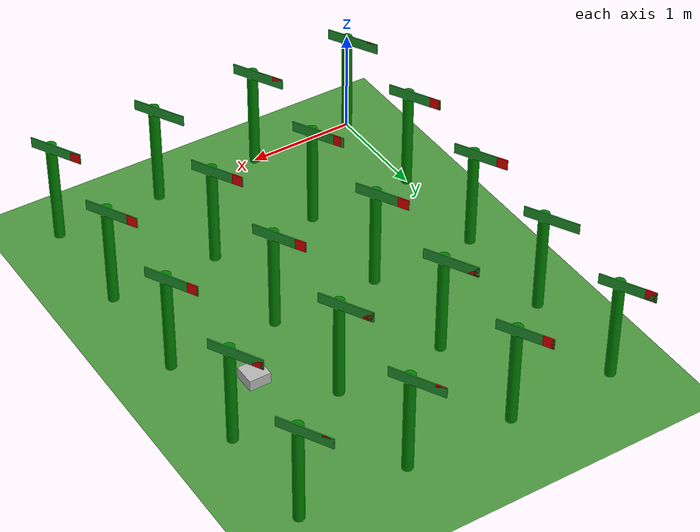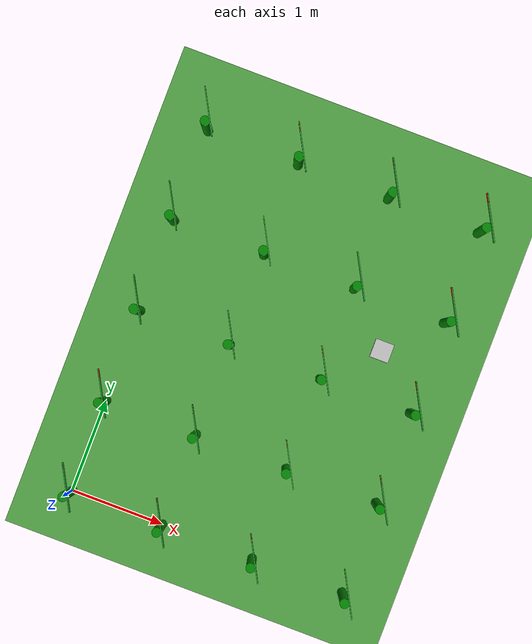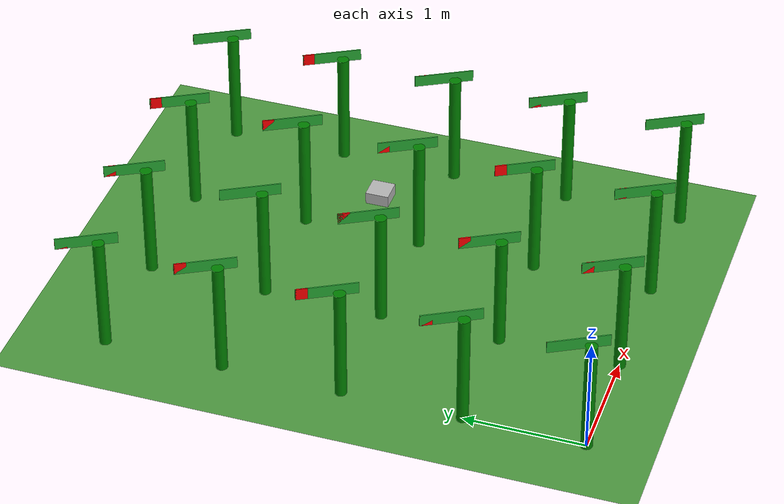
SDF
<?xml version="1.0" ?>
<sdf version="1.6">
  <world name="default">
    <!-- Lighting -->
    <light name="sun" type="directional">
      <pose>0 0 10 0 -0 0</pose>
      <diffuse>0.9 0.9 0.9 1</diffuse>
      <specular>0.9 0.9 0.9 1</specular>
      <attenuation>
        <range>100</range>
        <constant>0.9</constant>
        <linear>0.07</linear>
        <quadratic>0.017</quadratic>
      </attenuation>
      <direction>-1 -1 -1</direction>
    </light>

    <!-- Ground Plane -->
    <model name='ground_plane'>
      <static>true</static>
      <link name='link'>
        <collision name='collision'>
          <geometry>
            <plane>
              <normal>0 0 1</normal>
              <size>100 100</size>
            </plane>
          </geometry>
        </collision>
        <visual name='visual'>
          <geometry>
            <plane>
              <normal>0 0 1</normal>
              <size>100 100</size>
            </plane>
          </geometry>
          <material>
            <script>
              <uri>file://media/materials/scripts/gazebo.material</uri>
              <name>Gazebo/Grass</name>
            </script>
          </material>
        </visual>
      </link>
    </model>

    <model name='maize_field'>
      <model name='maize_plant_0_0'>
        <pose>0 0 0.5 0 0 0</pose>
        <static>true</static>
        <link name='stalk'>
          <visual name='stalk_visual'>
            <geometry>
              <cylinder>
                <radius>0.05</radius> <!-- Thickness of the stalk -->
                <length>1.0</length> <!-- Height of the stalk -->
              </cylinder>
            </geometry>
            <material>
              <diffuse>0 0.5 0 1</diffuse> <!-- Green color for the stalk -->
            </material>
          </visual>
          <collision name='stalk_collision'>
            <geometry>
              <cylinder>
                <radius>0.05</radius>
                <length>1.0</length>
              </cylinder>
            </geometry>
          </collision>
          <inertial>
            <mass>0.1</mass>
            <inertia>
              <ixx>0.01</ixx>
              <iyy>0.01</iyy>
              <izz>0.01</izz>
            </inertia>
          </inertial>
        </link>
        <link name='leaf'>
          <pose>0 0.1 0.5 0 0 0.5</pose> <!-- Position and orientation of the leaf -->
          <visual name='leaf_visual'>
            <geometry>
              <box>
                <size>0.01 0.5 0.1</size> <!-- Size of the leaf -->
              </box>
            </geometry>
            <material>
              <script>
                <uri>file://media/materials/scripts/gazebo.material</uri>
                <name>Gazebo/Green</name> <!-- Base green color -->
              </script>
            </material>
          </visual>
          <visual name='rust_patch'>
            <pose>0 0.2 0 0 0 0</pose> <!-- Position of the rust patch -->
            <geometry>
              <box>
                <size>0.01 0.1 0.1</size> <!-- Size of the rust patch -->
              </box>
            </geometry>
            <material>
              <diffuse>1 0 0 1</diffuse> <!-- Red color for rust -->
            </material>
          </visual>
          <collision name='leaf_collision'>
            <geometry>
              <box>
                <size>0.01 0.5 0.1</size>
              </box>
            </geometry>
          </collision>
          <inertial>
            <mass>0.01</mass>
            <inertia>
              <ixx>0.001</ixx>
              <iyy>0.001</iyy>
              <izz>0.001</izz>
            </inertia>
          </inertial>
        </link>
      </model>

      <!-- Maize Plant 1 -->
      <model name='maize_plant_0_0'>
        <pose>0 1 0.5 0 0 0</pose>
        <static>true</static>
        <link name='stalk'>
          <visual name='stalk_visual'>
            <geometry>
              <cylinder>
                <radius>0.05</radius> <!-- Thickness of the stalk -->
                <length>1.0</length> <!-- Height of the stalk -->
              </cylinder>
            </geometry>
            <material>
              <diffuse>0 0.5 0 1</diffuse> <!-- Green color for the stalk -->
            </material>
          </visual>
          <collision name='stalk_collision'>
            <geometry>
              <cylinder>
                <radius>0.05</radius>
                <length>1.0</length>
              </cylinder>
            </geometry>
          </collision>
          <inertial>
            <mass>0.1</mass>
            <inertia>
              <ixx>0.01</ixx>
              <iyy>0.01</iyy>
              <izz>0.01</izz>
            </inertia>
          </inertial>
        </link>
        <link name='leaf'>
          <pose>0 0.1 0.5 0 0 0.5</pose> <!-- Position and orientation of the leaf -->
          <visual name='leaf_visual'>
            <geometry>
              <box>
                <size>0.01 0.5 0.1</size> <!-- Size of the leaf -->
              </box>
            </geometry>
            <material>
              <script>
                <uri>file://media/materials/scripts/gazebo.material</uri>
                <name>Gazebo/Green</name> <!-- Base green color -->
              </script>
            </material>
          </visual>
          <visual name='rust_patch'>
            <pose>0 0.2 0 0 0 0</pose> <!-- Position of the rust patch -->
            <geometry>
              <box>
                <size>0.01 0.1 0.1</size> <!-- Size of the rust patch -->
              </box>
            </geometry>
            <material>
              <diffuse>1 0 0 1</diffuse> <!-- Red color for rust -->
            </material>
          </visual>
          <collision name='leaf_collision'>
            <geometry>
              <box>
                <size>0.01 0.5 0.1</size>
              </box>
            </geometry>
          </collision>
          <inertial>
            <mass>0.01</mass>
            <inertia>
              <ixx>0.001</ixx>
              <iyy>0.001</iyy>
              <izz>0.001</izz>
            </inertia>
          </inertial>
        </link>
      </model>

<!-- Maize Plant 2 -->
      <model name='maize_plant_0_1'>
        <pose>0 2 0.5 0 0 0</pose>
        <static>true</static>
        <link name='stalk'>
          <visual name='stalk_visual'>
            <geometry>
              <cylinder>
                <radius>0.05</radius>
                <length>1.0</length>
              </cylinder>
            </geometry>
            <material>
              <diffuse>0 0.5 0 1</diffuse>
            </material>
          </visual>
          <collision name='stalk_collision'>
            <geometry>
              <cylinder>
                <radius>0.05</radius>
                <length>1.0</length>
              </cylinder>
            </geometry>
          </collision>
          <inertial>
            <mass>0.1</mass>
            <inertia>
              <ixx>0.01</ixx>
              <iyy>0.01</iyy>
              <izz>0.01</izz>
            </inertia>
          </inertial>
        </link>
        <link name='leaf'>
          <pose>0 0.1 0.5 0 0 0.5</pose>
          <visual name='leaf_visual'>
            <geometry>
              <box>
                <size>0.01 0.5 0.1</size>
              </box>
            </geometry>
            <material>
              <script>
                <uri>file://media/materials/scripts/gazebo.material</uri>
                <name>Gazebo/Green</name>
              </script>
            </material>
          </visual>
          <visual name='rust_patch'>
            <pose>0 0.2 0 0 0 0</pose>
            <geometry>
              <box>
                <size>0.01 0.1 0.1</size>
              </box>
            </geometry>
            <material>
              <diffuse>1 0 0 1</diffuse>
            </material>
          </visual>
          <collision name='leaf_collision'>
            <geometry>
              <box>
                <size>0.01 0.5 0.1</size>
              </box>
            </geometry>
          </collision>
          <inertial>
            <mass>0.01</mass>
            <inertia>
              <ixx>0.001</ixx>
              <iyy>0.001</iyy>
              <izz>0.001</izz>
            </inertia>
          </inertial>
        </link>
      </model>

      <!-- Maize Plant 1 -->
      <model name='maize_plant_0_2'>
        <pose>0 3 0.5 0 0 0</pose>
        <static>true</static>
        <link name='stalk'>
          <visual name='stalk_visual'>
            <geometry>
              <cylinder>
                <radius>0.05</radius> <!-- Thickness of the stalk -->
                <length>1.0</length> <!-- Height of the stalk -->
              </cylinder>
            </geometry>
            <material>
              <diffuse>0 0.5 0 1</diffuse> <!-- Green color for the stalk -->
            </material>
          </visual>
          <collision name='stalk_collision'>
            <geometry>
              <cylinder>
                <radius>0.05</radius>
                <length>1.0</length>
              </cylinder>
            </geometry>
          </collision>
          <inertial>
            <mass>0.1</mass>
            <inertia>
              <ixx>0.01</ixx>
              <iyy>0.01</iyy>
              <izz>0.01</izz>
            </inertia>
          </inertial>
        </link>
        <link name='leaf'>
          <pose>0 0.1 0.5 0 0 0.5</pose> <!-- Position and orientation of the leaf -->
          <visual name='leaf_visual'>
            <geometry>
              <box>
                <size>0.01 0.5 0.1</size> <!-- Size of the leaf -->
              </box>
            </geometry>
            <material>
              <script>
                <uri>file://media/materials/scripts/gazebo.material</uri>
                <name>Gazebo/Green</name> <!-- Base green color -->
              </script>
            </material>
          </visual>
          <visual name='rust_patch'>
            <pose>0 0.2 0 0 0 0</pose> <!-- Position of the rust patch -->
            <geometry>
              <box>
                <size>0.01 0.1 0.1</size> <!-- Size of the rust patch -->
              </box>
            </geometry>
            <material>
              <diffuse>1 0 0 1</diffuse> <!-- Red color for rust -->
            </material>
          </visual>
          <collision name='leaf_collision'>
            <geometry>
              <box>
                <size>0.01 0.5 0.1</size>
              </box>
            </geometry>
          </collision>
          <inertial>
            <mass>0.01</mass>
            <inertia>
              <ixx>0.001</ixx>
              <iyy>0.001</iyy>
              <izz>0.001</izz>
            </inertia>
          </inertial>
        </link>
      </model>

      <!-- Maize Plant 1 -->
      <model name='maize_plant_0_3'>
        <pose>0 4 0.5 0 0 0</pose>
        <static>true</static>
        <link name='stalk'>
          <visual name='stalk_visual'>
            <geometry>
              <cylinder>
                <radius>0.05</radius> <!-- Thickness of the stalk -->
                <length>1.0</length> <!-- Height of the stalk -->
              </cylinder>
            </geometry>
            <material>
              <diffuse>0 0.5 0 1</diffuse> <!-- Green color for the stalk -->
            </material>
          </visual>
          <collision name='stalk_collision'>
            <geometry>
              <cylinder>
                <radius>0.05</radius>
                <length>1.0</length>
              </cylinder>
            </geometry>
          </collision>
          <inertial>
            <mass>0.1</mass>
            <inertia>
              <ixx>0.01</ixx>
              <iyy>0.01</iyy>
              <izz>0.01</izz>
            </inertia>
          </inertial>
        </link>
        <link name='leaf'>
          <pose>0 0.1 0.5 0 0 0.5</pose> <!-- Position and orientation of the leaf -->
          <visual name='leaf_visual'>
            <geometry>
              <box>
                <size>0.01 0.5 0.1</size> <!-- Size of the leaf -->
              </box>
            </geometry>
            <material>
              <script>
                <uri>file://media/materials/scripts/gazebo.material</uri>
                <name>Gazebo/Green</name> <!-- Base green color -->
              </script>
            </material>
          </visual>
          <visual name='rust_patch'>
            <pose>0 0.2 0 0 0 0</pose> <!-- Position of the rust patch -->
            <geometry>
              <box>
                <size>0.01 0.1 0.1</size> <!-- Size of the rust patch -->
              </box>
            </geometry>
            <material>
              <diffuse>1 0 0 1</diffuse> <!-- Red color for rust -->
            </material>
          </visual>
          <collision name='leaf_collision'>
            <geometry>
              <box>
                <size>0.01 0.5 0.1</size>
              </box>
            </geometry>
          </collision>
          <inertial>
            <mass>0.01</mass>
            <inertia>
              <ixx>0.001</ixx>
              <iyy>0.001</iyy>
              <izz>0.001</izz>
            </inertia>
          </inertial>
        </link>
      </model>

<!-- Maize Plant 3 -->
      <model name='maize_plant_1_0'>
        <pose>1 0 0.5 0 0 0</pose>
        <static>true</static>
        <link name='stalk'>
          <visual name='stalk_visual'>
            <geometry>
              <cylinder>
                <radius>0.05</radius>
                <length>1.0</length>
              </cylinder>
            </geometry>
            <material>
              <diffuse>0 0.5 0 1</diffuse>
            </material>
          </visual>
          <collision name='stalk_collision'>
            <geometry>
              <cylinder>
                <radius>0.05</radius>
                <length>1.0</length>
              </cylinder>
            </geometry>
          </collision>
          <inertial>
            <mass>0.1</mass>
            <inertia>
              <ixx>0.01</ixx>
              <iyy>0.01</iyy>
              <izz>0.01</izz>
            </inertia>
          </inertial>
        </link>
        <link name='leaf'>
          <pose>0 0.1 0.5 0 0 0.5</pose>
          <visual name='leaf_visual'>
            <geometry>
              <box>
                <size>0.01 0.5 0.1</size>
              </box>
            </geometry>
            <material>
              <script>
                <uri>file://media/materials/scripts/gazebo.material</uri>
                <name>Gazebo/Green</name>
              </script>
            </material>
          </visual>
          <visual name='rust_patch'>
            <pose>0 0.2 0 0 0 0</pose>
            <geometry>
              <box>
                <size>0.01 0.1 0.1</size>
              </box>
            </geometry>
            <material>
              <diffuse>1 0 0 1</diffuse>
            </material>
          </visual>
          <collision name='leaf_collision'>
            <geometry>
              <box>
                <size>0.01 0.5 0.1</size>
              </box>
            </geometry>
          </collision>
          <inertial>
            <mass>0.01</mass>
            <inertia>
              <ixx>0.001</ixx>
              <iyy>0.001</iyy>
              <izz>0.001</izz>
            </inertia>
          </inertial>
        </link>
      </model>

<!-- Maize Plant 4 -->
      <model name='maize_plant_1_2'>
        <pose>1 1 0.5 0 0 0</pose>
        <static>true</static>
        <link name='stalk'>
          <visual name='stalk_visual'>
            <geometry>
              <cylinder>
                <radius>0.05</radius>
                <length>1.0</length>
              </cylinder>
            </geometry>
            <material>
              <diffuse>0 0.5 0 1</diffuse>
            </material>
          </visual>
          <collision name='stalk_collision'>
            <geometry>
              <cylinder>
                <radius>0.05</radius>
                <length>1.0</length>
              </cylinder>
            </geometry>
          </collision>
          <inertial>
            <mass>0.1</mass>
            <inertia>
              <ixx>0.01</ixx>
              <iyy>0.01</iyy>
              <izz>0.01</izz>
            </inertia>
          </inertial>
        </link>
        <link name='leaf'>
          <pose>0 0.1 0.5 0 0 0.5</pose>
          <visual name='leaf_visual'>
            <geometry>
              <box>
                <size>0.01 0.5 0.1</size>
              </box>
            </geometry>
            <material>
              <script>
                <uri>file://media/materials/scripts/gazebo.material</uri>
                <name>Gazebo/Green</name>
              </script>
            </material>
          </visual>
          <visual name='rust_patch'>
            <pose>0 0.2 0 0 0 0</pose>
            <geometry>
              <box>
                <size>0.01 0.1 0.1</size>
              </box>
            </geometry>
            <material>
              <diffuse>1 0 0 1</diffuse>
            </material>
          </visual>
          <collision name='leaf_collision'>
            <geometry>
              <box>
                <size>0.01 0.5 0.1</size>
              </box>
            </geometry>
          </collision>
          <inertial>
            <mass>0.01</mass>
            <inertia>
              <ixx>0.001</ixx>
              <iyy>0.001</iyy>
              <izz>0.001</izz>
            </inertia>
          </inertial>
        </link>
      </model>

    <!-- Maize Plant 4 -->
      <model name='maize_plant_1_3'>
        <pose>1 2 0.5 0 0 0</pose>
        <static>true</static>
        <link name='stalk'>
          <visual name='stalk_visual'>
            <geometry>
              <cylinder>
                <radius>0.05</radius>
                <length>1.0</length>
              </cylinder>
            </geometry>
            <material>
              <diffuse>0 0.5 0 1</diffuse>
            </material>
          </visual>
          <collision name='stalk_collision'>
            <geometry>
              <cylinder>
                <radius>0.05</radius>
                <length>1.0</length>
              </cylinder>
            </geometry>
          </collision>
          <inertial>
            <mass>0.1</mass>
            <inertia>
              <ixx>0.01</ixx>
              <iyy>0.01</iyy>
              <izz>0.01</izz>
            </inertia>
          </inertial>
        </link>
        <link name='leaf'>
          <pose>0 0.1 0.5 0 0 0.5</pose>
          <visual name='leaf_visual'>
            <geometry>
              <box>
                <size>0.01 0.5 0.1</size>
              </box>
            </geometry>
            <material>
              <script>
                <uri>file://media/materials/scripts/gazebo.material</uri>
                <name>Gazebo/Green</name>
              </script>
            </material>
          </visual>
          <visual name='rust_patch'>
            <pose>0 0.2 0 0 0 0</pose>
            <geometry>
              <box>
                <size>0.01 0.1 0.1</size>
              </box>
            </geometry>
            <material>
              <diffuse>1 0 0 1</diffuse>
            </material>
          </visual>
          <collision name='leaf_collision'>
            <geometry>
              <box>
                <size>0.01 0.5 0.1</size>
              </box>
            </geometry>
          </collision>
          <inertial>
            <mass>0.01</mass>
            <inertia>
              <ixx>0.001</ixx>
              <iyy>0.001</iyy>
              <izz>0.001</izz>
            </inertia>
          </inertial>
        </link>
      </model>

    <!-- Maize Plant 4 -->
      <model name='maize_plant_1_3'>
        <pose>1 3 0.5 0 0 0</pose>
        <static>true</static>
        <link name='stalk'>
          <visual name='stalk_visual'>
            <geometry>
              <cylinder>
                <radius>0.05</radius>
                <length>1.0</length>
              </cylinder>
            </geometry>
            <material>
              <diffuse>0 0.5 0 1</diffuse>
            </material>
          </visual>
          <collision name='stalk_collision'>
            <geometry>
              <cylinder>
                <radius>0.05</radius>
                <length>1.0</length>
              </cylinder>
            </geometry>
          </collision>
          <inertial>
            <mass>0.1</mass>
            <inertia>
              <ixx>0.01</ixx>
              <iyy>0.01</iyy>
              <izz>0.01</izz>
            </inertia>
          </inertial>
        </link>
        <link name='leaf'>
          <pose>0 0.1 0.5 0 0 0.5</pose>
          <visual name='leaf_visual'>
            <geometry>
              <box>
                <size>0.01 0.5 0.1</size>
              </box>
            </geometry>
            <material>
              <script>
                <uri>file://media/materials/scripts/gazebo.material</uri>
                <name>Gazebo/Green</name>
              </script>
            </material>
          </visual>
          <visual name='rust_patch'>
            <pose>0 0.2 0 0 0 0</pose>
            <geometry>
              <box>
                <size>0.01 0.1 0.1</size>
              </box>
            </geometry>
            <material>
              <diffuse>1 0 0 1</diffuse>
            </material>
          </visual>
          <collision name='leaf_collision'>
            <geometry>
              <box>
                <size>0.01 0.5 0.1</size>
              </box>
            </geometry>
          </collision>
          <inertial>
            <mass>0.01</mass>
            <inertia>
              <ixx>0.001</ixx>
              <iyy>0.001</iyy>
              <izz>0.001</izz>
            </inertia>
          </inertial>
        </link>
      </model>

    <!-- Maize Plant 4 -->
      <model name='maize_plant_1_4'>
        <pose>1 4 0.5 0 0 0</pose>
        <static>true</static>
        <link name='stalk'>
          <visual name='stalk_visual'>
            <geometry>
              <cylinder>
                <radius>0.05</radius>
                <length>1.0</length>
              </cylinder>
            </geometry>
            <material>
              <diffuse>0 0.5 0 1</diffuse>
            </material>
          </visual>
          <collision name='stalk_collision'>
            <geometry>
              <cylinder>
                <radius>0.05</radius>
                <length>1.0</length>
              </cylinder>
            </geometry>
          </collision>
          <inertial>
            <mass>0.1</mass>
            <inertia>
              <ixx>0.01</ixx>
              <iyy>0.01</iyy>
              <izz>0.01</izz>
            </inertia>
          </inertial>
        </link>
        <link name='leaf'>
          <pose>0 0.1 0.5 0 0 0.5</pose>
          <visual name='leaf_visual'>
            <geometry>
              <box>
                <size>0.01 0.5 0.1</size>
              </box>
            </geometry>
            <material>
              <script>
                <uri>file://media/materials/scripts/gazebo.material</uri>
                <name>Gazebo/Green</name>
              </script>
            </material>
          </visual>
          <visual name='rust_patch'>
            <pose>0 0.2 0 0 0 0</pose>
            <geometry>
              <box>
                <size>0.01 0.1 0.1</size>
              </box>
            </geometry>
            <material>
              <diffuse>1 0 0 1</diffuse>
            </material>
          </visual>
          <collision name='leaf_collision'>
            <geometry>
              <box>
                <size>0.01 0.5 0.1</size>
              </box>
            </geometry>
          </collision>
          <inertial>
            <mass>0.01</mass>
            <inertia>
              <ixx>0.001</ixx>
              <iyy>0.001</iyy>
              <izz>0.001</izz>
            </inertia>
          </inertial>
        </link>
      </model>

      <model name='maize_plant_0_7'>
        <pose>2 0 0.5 0 0 0</pose>
        <static>true</static>
        <link name='stalk'>
          <visual name='stalk_visual'>
            <geometry>
              <cylinder>
                <radius>0.05</radius> <!-- Thickness of the stalk -->
                <length>1.0</length> <!-- Height of the stalk -->
              </cylinder>
            </geometry>
            <material>
              <diffuse>0 0.5 0 1</diffuse> <!-- Green color for the stalk -->
            </material>
          </visual>
          <collision name='stalk_collision'>
            <geometry>
              <cylinder>
                <radius>0.05</radius>
                <length>1.0</length>
              </cylinder>
            </geometry>
          </collision>
          <inertial>
            <mass>0.1</mass>
            <inertia>
              <ixx>0.01</ixx>
              <iyy>0.01</iyy>
              <izz>0.01</izz>
            </inertia>
          </inertial>
        </link>
        <link name='leaf'>
          <pose>0 0.1 0.5 0 0 0.5</pose> <!-- Position and orientation of the leaf -->
          <visual name='leaf_visual'>
            <geometry>
              <box>
                <size>0.01 0.5 0.1</size> <!-- Size of the leaf -->
              </box>
            </geometry>
            <material>
              <script>
                <uri>file://media/materials/scripts/gazebo.material</uri>
                <name>Gazebo/Green</name> <!-- Base green color -->
              </script>
            </material>
          </visual>
          <visual name='rust_patch'>
            <pose>0 0.2 0 0 0 0</pose> <!-- Position of the rust patch -->
            <geometry>
              <box>
                <size>0.01 0.1 0.1</size> <!-- Size of the rust patch -->
              </box>
            </geometry>
            <material>
              <diffuse>1 0 0 1</diffuse> <!-- Red color for rust -->
            </material>
          </visual>
          <collision name='leaf_collision'>
            <geometry>
              <box>
                <size>0.01 0.5 0.1</size>
              </box>
            </geometry>
          </collision>
          <inertial>
            <mass>0.01</mass>
            <inertia>
              <ixx>0.001</ixx>
              <iyy>0.001</iyy>
              <izz>0.001</izz>
            </inertia>
          </inertial>
        </link>
      </model>

      <!-- Maize Plant 1 -->
      <model name='maize_plant_0_8'>
        <pose>2 1 0.5 0 0 0</pose>
        <static>true</static>
        <link name='stalk'>
          <visual name='stalk_visual'>
            <geometry>
              <cylinder>
                <radius>0.05</radius> <!-- Thickness of the stalk -->
                <length>1.0</length> <!-- Height of the stalk -->
              </cylinder>
            </geometry>
            <material>
              <diffuse>0 0.5 0 1</diffuse> <!-- Green color for the stalk -->
            </material>
          </visual>
          <collision name='stalk_collision'>
            <geometry>
              <cylinder>
                <radius>0.05</radius>
                <length>1.0</length>
              </cylinder>
            </geometry>
          </collision>
          <inertial>
            <mass>0.1</mass>
            <inertia>
              <ixx>0.01</ixx>
              <iyy>0.01</iyy>
              <izz>0.01</izz>
            </inertia>
          </inertial>
        </link>
        <link name='leaf'>
          <pose>0 0.1 0.5 0 0 0.5</pose> <!-- Position and orientation of the leaf -->
          <visual name='leaf_visual'>
            <geometry>
              <box>
                <size>0.01 0.5 0.1</size> <!-- Size of the leaf -->
              </box>
            </geometry>
            <material>
              <script>
                <uri>file://media/materials/scripts/gazebo.material</uri>
                <name>Gazebo/Green</name> <!-- Base green color -->
              </script>
            </material>
          </visual>
          <visual name='rust_patch'>
            <pose>0 0.2 0 0 0 0</pose> <!-- Position of the rust patch -->
            <geometry>
              <box>
                <size>0.01 0.1 0.1</size> <!-- Size of the rust patch -->
              </box>
            </geometry>
            <material>
              <diffuse>1 0 0 1</diffuse> <!-- Red color for rust -->
            </material>
          </visual>
          <collision name='leaf_collision'>
            <geometry>
              <box>
                <size>0.01 0.5 0.1</size>
              </box>
            </geometry>
          </collision>
          <inertial>
            <mass>0.01</mass>
            <inertia>
              <ixx>0.001</ixx>
              <iyy>0.001</iyy>
              <izz>0.001</izz>
            </inertia>
          </inertial>
        </link>
      </model>

<!-- Maize Plant 2 -->
      <model name='maize_plant_0_6'>
        <pose>2 2 0.5 0 0 0</pose>
        <static>true</static>
        <link name='stalk'>
          <visual name='stalk_visual'>
            <geometry>
              <cylinder>
                <radius>0.05</radius>
                <length>1.0</length>
              </cylinder>
            </geometry>
            <material>
              <diffuse>0 0.5 0 1</diffuse>
            </material>
          </visual>
          <collision name='stalk_collision'>
            <geometry>
              <cylinder>
                <radius>0.05</radius>
                <length>1.0</length>
              </cylinder>
            </geometry>
          </collision>
          <inertial>
            <mass>0.1</mass>
            <inertia>
              <ixx>0.01</ixx>
              <iyy>0.01</iyy>
              <izz>0.01</izz>
            </inertia>
          </inertial>
        </link>
        <link name='leaf'>
          <pose>0 0.1 0.5 0 0 0.5</pose>
          <visual name='leaf_visual'>
            <geometry>
              <box>
                <size>0.01 0.5 0.1</size>
              </box>
            </geometry>
            <material>
              <script>
                <uri>file://media/materials/scripts/gazebo.material</uri>
                <name>Gazebo/Green</name>
              </script>
            </material>
          </visual>
          <visual name='rust_patch'>
            <pose>0 0.2 0 0 0 0</pose>
            <geometry>
              <box>
                <size>0.01 0.1 0.1</size>
              </box>
            </geometry>
            <material>
              <diffuse>1 0 0 1</diffuse>
            </material>
          </visual>
          <collision name='leaf_collision'>
            <geometry>
              <box>
                <size>0.01 0.5 0.1</size>
              </box>
            </geometry>
          </collision>
          <inertial>
            <mass>0.01</mass>
            <inertia>
              <ixx>0.001</ixx>
              <iyy>0.001</iyy>
              <izz>0.001</izz>
            </inertia>
          </inertial>
        </link>
      </model>

      <!-- Maize Plant 1 -->
      <model name='maize_plant_0_10'>
        <pose>2 3 0.5 0 0 0</pose>
        <static>true</static>
        <link name='stalk'>
          <visual name='stalk_visual'>
            <geometry>
              <cylinder>
                <radius>0.05</radius> <!-- Thickness of the stalk -->
                <length>1.0</length> <!-- Height of the stalk -->
              </cylinder>
            </geometry>
            <material>
              <diffuse>0 0.5 0 1</diffuse> <!-- Green color for the stalk -->
            </material>
          </visual>
          <collision name='stalk_collision'>
            <geometry>
              <cylinder>
                <radius>0.05</radius>
                <length>1.0</length>
              </cylinder>
            </geometry>
          </collision>
          <inertial>
            <mass>0.1</mass>
            <inertia>
              <ixx>0.01</ixx>
              <iyy>0.01</iyy>
              <izz>0.01</izz>
            </inertia>
          </inertial>
        </link>
        <link name='leaf'>
          <pose>0 0.1 0.5 0 0 0.5</pose> <!-- Position and orientation of the leaf -->
          <visual name='leaf_visual'>
            <geometry>
              <box>
                <size>0.01 0.5 0.1</size> <!-- Size of the leaf -->
              </box>
            </geometry>
            <material>
              <script>
                <uri>file://media/materials/scripts/gazebo.material</uri>
                <name>Gazebo/Green</name> <!-- Base green color -->
              </script>
            </material>
          </visual>
          <visual name='rust_patch'>
            <pose>0 0.2 0 0 0 0</pose> <!-- Position of the rust patch -->
            <geometry>
              <box>
                <size>0.01 0.1 0.1</size> <!-- Size of the rust patch -->
              </box>
            </geometry>
            <material>
              <diffuse>1 0 0 1</diffuse> <!-- Red color for rust -->
            </material>
          </visual>
          <collision name='leaf_collision'>
            <geometry>
              <box>
                <size>0.01 0.5 0.1</size>
              </box>
            </geometry>
          </collision>
          <inertial>
            <mass>0.01</mass>
            <inertia>
              <ixx>0.001</ixx>
              <iyy>0.001</iyy>
              <izz>0.001</izz>
            </inertia>
          </inertial>
        </link>
      </model>

      <model name='maize_plant_2_0'>
        <pose>2 4 0.5 0 0 0</pose>
        <static>true</static>
        <link name='stalk'>
          <visual name='stalk_visual'>
            <geometry>
              <cylinder>
                <radius>0.05</radius> <!-- Thickness of the stalk -->
                <length>1.0</length> <!-- Height of the stalk -->
              </cylinder>
            </geometry>
            <material>
              <diffuse>0 0.5 0 1</diffuse> <!-- Green color for the stalk -->
            </material>
          </visual>
          <collision name='stalk_collision'>
            <geometry>
              <cylinder>
                <radius>0.05</radius>
                <length>1.0</length>
              </cylinder>
            </geometry>
          </collision>
          <inertial>
            <mass>0.1</mass>
            <inertia>
              <ixx>0.01</ixx>
              <iyy>0.01</iyy>
              <izz>0.01</izz>
            </inertia>
          </inertial>
        </link>
        <link name='leaf'>
          <pose>0 0.1 0.5 0 0 0.5</pose> <!-- Position and orientation of the leaf -->
          <visual name='leaf_visual'>
            <geometry>
              <box>
                <size>0.01 0.5 0.1</size> <!-- Size of the leaf -->
              </box>
            </geometry>
            <material>
              <script>
                <uri>file://media/materials/scripts/gazebo.material</uri>
                <name>Gazebo/Green</name> <!-- Base green color -->
              </script>
            </material>
          </visual>
          <visual name='rust_patch'>
            <pose>0 0.2 0 0 0 0</pose> <!-- Position of the rust patch -->
            <geometry>
              <box>
                <size>0.01 0.1 0.1</size> <!-- Size of the rust patch -->
              </box>
            </geometry>
            <material>
              <diffuse>1 0 0 1</diffuse> <!-- Red color for rust -->
            </material>
          </visual>
          <collision name='leaf_collision'>
            <geometry>
              <box>
                <size>0.01 0.5 0.1</size>
              </box>
            </geometry>
          </collision>
          <inertial>
            <mass>0.01</mass>
            <inertia>
              <ixx>0.001</ixx>
              <iyy>0.001</iyy>
              <izz>0.001</izz>
            </inertia>
          </inertial>
        </link>
      </model>

<!-- Maize Plant 3 -->
      <model name='maize_plant_3_0'>
        <pose>3 0 0.5 0 0 0</pose>
        <static>true</static>
        <link name='stalk'>
          <visual name='stalk_visual'>
            <geometry>
              <cylinder>
                <radius>0.05</radius>
                <length>1.0</length>
              </cylinder>
            </geometry>
            <material>
              <diffuse>0 0.5 0 1</diffuse>
            </material>
          </visual>
          <collision name='stalk_collision'>
            <geometry>
              <cylinder>
                <radius>0.05</radius>
                <length>1.0</length>
              </cylinder>
            </geometry>
          </collision>
          <inertial>
            <mass>0.1</mass>
            <inertia>
              <ixx>0.01</ixx>
              <iyy>0.01</iyy>
              <izz>0.01</izz>
            </inertia>
          </inertial>
        </link>
        <link name='leaf'>
          <pose>0 0.1 0.5 0 0 0.5</pose>
          <visual name='leaf_visual'>
            <geometry>
              <box>
                <size>0.01 0.5 0.1</size>
              </box>
            </geometry>
            <material>
              <script>
                <uri>file://media/materials/scripts/gazebo.material</uri>
                <name>Gazebo/Green</name>
              </script>
            </material>
          </visual>
          <visual name='rust_patch'>
            <pose>0 0.2 0 0 0 0</pose>
            <geometry>
              <box>
                <size>0.01 0.1 0.1</size>
              </box>
            </geometry>
            <material>
              <diffuse>1 0 0 1</diffuse>
            </material>
          </visual>
          <collision name='leaf_collision'>
            <geometry>
              <box>
                <size>0.01 0.5 0.1</size>
              </box>
            </geometry>
          </collision>
          <inertial>
            <mass>0.01</mass>
            <inertia>
              <ixx>0.001</ixx>
              <iyy>0.001</iyy>
              <izz>0.001</izz>
            </inertia>
          </inertial>
        </link>
      </model>

<!-- Maize Plant 4 -->
      <model name='maize_plant_3_1'>
        <pose>3 1 0.5 0 0 0</pose>
        <static>true</static>
        <link name='stalk'>
          <visual name='stalk_visual'>
            <geometry>
              <cylinder>
                <radius>0.05</radius>
                <length>1.0</length>
              </cylinder>
            </geometry>
            <material>
              <diffuse>0 0.5 0 1</diffuse>
            </material>
          </visual>
          <collision name='stalk_collision'>
            <geometry>
              <cylinder>
                <radius>0.05</radius>
                <length>1.0</length>
              </cylinder>
            </geometry>
          </collision>
          <inertial>
            <mass>0.1</mass>
            <inertia>
              <ixx>0.01</ixx>
              <iyy>0.01</iyy>
              <izz>0.01</izz>
            </inertia>
          </inertial>
        </link>
        <link name='leaf'>
          <pose>0 0.1 0.5 0 0 0.5</pose>
          <visual name='leaf_visual'>
            <geometry>
              <box>
                <size>0.01 0.5 0.1</size>
              </box>
            </geometry>
            <material>
              <script>
                <uri>file://media/materials/scripts/gazebo.material</uri>
                <name>Gazebo/Green</name>
              </script>
            </material>
          </visual>
          <visual name='rust_patch'>
            <pose>0 0.2 0 0 0 0</pose>
            <geometry>
              <box>
                <size>0.01 0.1 0.1</size>
              </box>
            </geometry>
            <material>
              <diffuse>1 0 0 1</diffuse>
            </material>
          </visual>
          <collision name='leaf_collision'>
            <geometry>
              <box>
                <size>0.01 0.5 0.1</size>
              </box>
            </geometry>
          </collision>
          <inertial>
            <mass>0.01</mass>
            <inertia>
              <ixx>0.001</ixx>
              <iyy>0.001</iyy>
              <izz>0.001</izz>
            </inertia>
          </inertial>
        </link>
      </model>

    <!-- Maize Plant 4 -->
      <model name='maize_plant_4_1'>
        <pose>3 2 0.5 0 0 0</pose>
        <static>true</static>
        <link name='stalk'>
          <visual name='stalk_visual'>
            <geometry>
              <cylinder>
                <radius>0.05</radius>
                <length>1.0</length>
              </cylinder>
            </geometry>
            <material>
              <diffuse>0 0.5 0 1</diffuse>
            </material>
          </visual>
          <collision name='stalk_collision'>
            <geometry>
              <cylinder>
                <radius>0.05</radius>
                <length>1.0</length>
              </cylinder>
            </geometry>
          </collision>
          <inertial>
            <mass>0.1</mass>
            <inertia>
              <ixx>0.01</ixx>
              <iyy>0.01</iyy>
              <izz>0.01</izz>
            </inertia>
          </inertial>
        </link>
        <link name='leaf'>
          <pose>0 0.1 0.5 0 0 0.5</pose>
          <visual name='leaf_visual'>
            <geometry>
              <box>
                <size>0.01 0.5 0.1</size>
              </box>
            </geometry>
            <material>
              <script>
                <uri>file://media/materials/scripts/gazebo.material</uri>
                <name>Gazebo/Green</name>
              </script>
            </material>
          </visual>
          <visual name='rust_patch'>
            <pose>0 0.2 0 0 0 0</pose>
            <geometry>
              <box>
                <size>0.01 0.1 0.1</size>
              </box>
            </geometry>
            <material>
              <diffuse>1 0 0 1</diffuse>
            </material>
          </visual>
          <collision name='leaf_collision'>
            <geometry>
              <box>
                <size>0.01 0.5 0.1</size>
              </box>
            </geometry>
          </collision>
          <inertial>
            <mass>0.01</mass>
            <inertia>
              <ixx>0.001</ixx>
              <iyy>0.001</iyy>
              <izz>0.001</izz>
            </inertia>
          </inertial>
        </link>
      </model>

    <!-- Maize Plant 4 -->
      <model name='maize_plant_5_1'>
        <pose>3 3 0.5 0 0 0</pose>
        <static>true</static>
        <link name='stalk'>
          <visual name='stalk_visual'>
            <geometry>
              <cylinder>
                <radius>0.05</radius>
                <length>1.0</length>
              </cylinder>
            </geometry>
            <material>
              <diffuse>0 0.5 0 1</diffuse>
            </material>
          </visual>
          <collision name='stalk_collision'>
            <geometry>
              <cylinder>
                <radius>0.05</radius>
                <length>1.0</length>
              </cylinder>
            </geometry>
          </collision>
          <inertial>
            <mass>0.1</mass>
            <inertia>
              <ixx>0.01</ixx>
              <iyy>0.01</iyy>
              <izz>0.01</izz>
            </inertia>
          </inertial>
        </link>
        <link name='leaf'>
          <pose>0 0.1 0.5 0 0 0.5</pose>
          <visual name='leaf_visual'>
            <geometry>
              <box>
                <size>0.01 0.5 0.1</size>
              </box>
            </geometry>
            <material>
              <script>
                <uri>file://media/materials/scripts/gazebo.material</uri>
                <name>Gazebo/Green</name>
              </script>
            </material>
          </visual>
          <visual name='rust_patch'>
            <pose>0 0.2 0 0 0 0</pose>
            <geometry>
              <box>
                <size>0.01 0.1 0.1</size>
              </box>
            </geometry>
            <material>
              <diffuse>1 0 0 1</diffuse>
            </material>
          </visual>
          <collision name='leaf_collision'>
            <geometry>
              <box>
                <size>0.01 0.5 0.1</size>
              </box>
            </geometry>
          </collision>
          <inertial>
            <mass>0.01</mass>
            <inertia>
              <ixx>0.001</ixx>
              <iyy>0.001</iyy>
              <izz>0.001</izz>
            </inertia>
          </inertial>
        </link>
      </model>

    <!-- Maize Plant 4 -->
      <model name='maize_plant_6_1'>
        <pose>3 4 0.5 0 0 0</pose>
        <static>true</static>
        <link name='stalk'>
          <visual name='stalk_visual'>
            <geometry>
              <cylinder>
                <radius>0.05</radius>
                <length>1.0</length>
              </cylinder>
            </geometry>
            <material>
              <diffuse>0 0.5 0 1</diffuse>
            </material>
          </visual>
          <collision name='stalk_collision'>
            <geometry>
              <cylinder>
                <radius>0.05</radius>
                <length>1.0</length>
              </cylinder>
            </geometry>
          </collision>
          <inertial>
            <mass>0.1</mass>
            <inertia>
              <ixx>0.01</ixx>
              <iyy>0.01</iyy>
              <izz>0.01</izz>
            </inertia>
          </inertial>
        </link>
        <link name='leaf'>
          <pose>0 0.1 0.5 0 0 0.5</pose>
          <visual name='leaf_visual'>
            <geometry>
              <box>
                <size>0.01 0.5 0.1</size>
              </box>
            </geometry>
            <material>
              <script>
                <uri>file://media/materials/scripts/gazebo.material</uri>
                <name>Gazebo/Green</name>
              </script>
            </material>
          </visual>
          <visual name='rust_patch'>
            <pose>0 0.2 0 0 0 0</pose>
            <geometry>
              <box>
                <size>0.01 0.1 0.1</size>
              </box>
            </geometry>
            <material>
              <diffuse>1 0 0 1</diffuse>
            </material>
          </visual>
          <collision name='leaf_collision'>
            <geometry>
              <box>
                <size>0.01 0.5 0.1</size>
              </box>
            </geometry>
          </collision>
          <inertial>
            <mass>0.01</mass>
            <inertia>
              <ixx>0.001</ixx>
              <iyy>0.001</iyy>
              <izz>0.001</izz>
            </inertia>
          </inertial>
        </link>
      </model>
    </model>

    <!-- Optional: Add more models and elements here -->
    <!-- Example: A simple box model -->
    <model name="box_model">
      <pose>2.5 2.5 0 0 0 0</pose>
      <link name="box_link">
        <collision name="box_collision">
          <geometry>
            <box>
              <size>0.2 0.2 0.2</size>
            </box>
          </geometry>
        </collision>
        <visual name="box_visual">
          <geometry>
            <box>
              <size>0.2 0.2 0.2</size>
            </box>
          </geometry>
        </visual>
      </link>
    </model>

    <!-- Ground Plane -->
    <model name="ground">
      <pose frame=''>0 0 0 0 0 0</pose>
      <link name="ground_link">
        <collision name="collision">
          <geometry>
            <plane>
              <normal>0 0 1</normal>
              <size>100 100</size>
            </plane>
          </geometry>
        </collision>
        <visual name="visual">
          <geometry>
            <plane>
              <normal>0 0 1</normal>
              <size>100 100</size>
            </plane>
          </geometry>
        </visual>
      </link>
    </model>

  </world>
</sdf>
